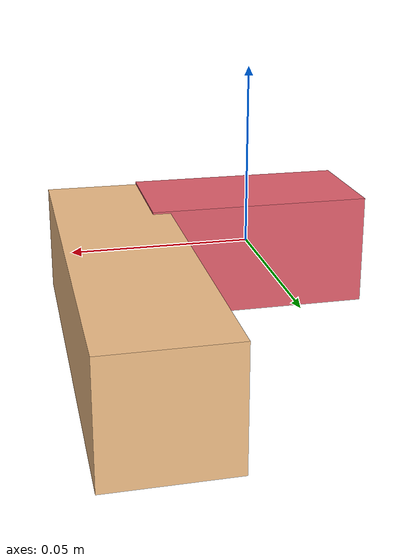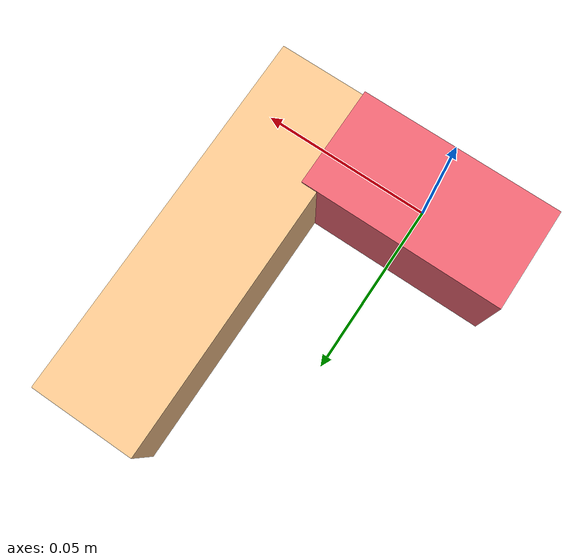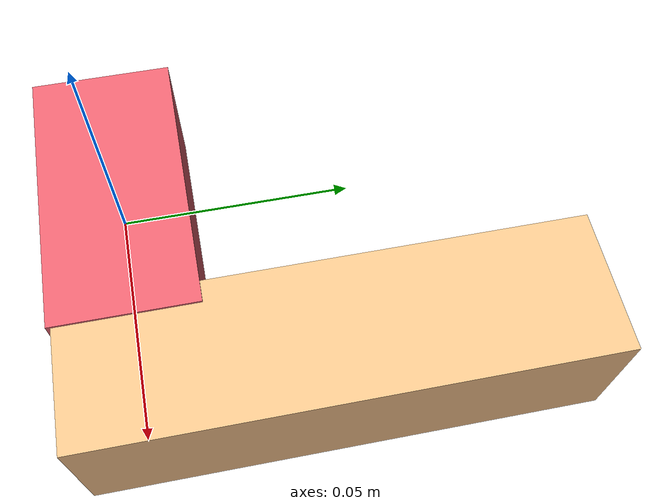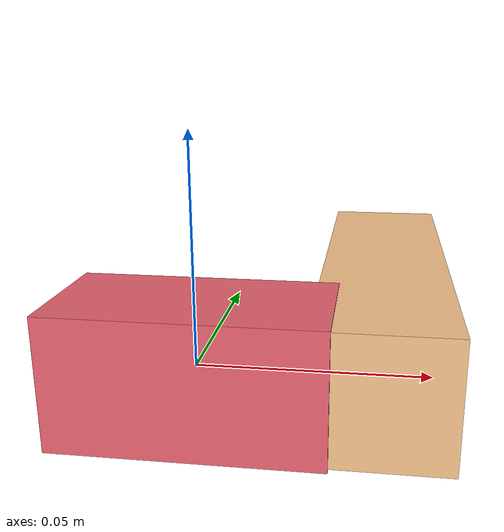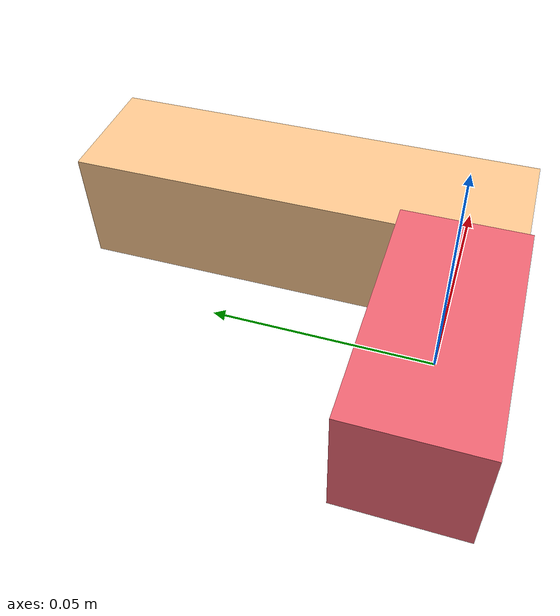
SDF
<sdf version="1.4"><world name="default"><model name="object0"><link name="link1"><pose>0 0 0 0 0 0</pose><inertial><pose>0 0 0 0 0 0</pose><mass>0.03194069203627867</mass><inertia><ixx>4.7911038054417996e-06</ixx><ixy>0</ixy><iyy>1.1708007149792806e-05</iyy><ixz>0</ixz><iyz>0</iyz><izz>1.1708007149792806e-05</izz></inertia></inertial><visual name="link1_visual"><pose>0 0  0 0 0 0</pose><geometry><box><size>0.05914942969681235 0.03 0.03</size></box></geometry><material><diffuse>0.8973528345440818 0.37789678793451714 0.4296857379028819 1</diffuse></material></visual><collision><pose>0 0  0 0 0 0</pose><geometry><box><size>0.05914942969681235 0.03 0.03</size></box></geometry></collision></link><link name="link2"><pose>0.03985637759506009 0.04009729082313061 0 0 0 0</pose><inertial><pose>0 0 0 0 0 0</pose><mass>0.058591025689413004</mass><inertia><ixx>6.158728372962686e-05</ixx><ixy>0</ixy><iyy>8.500581310439003e-06</iyy><ixz>0</ixz><iyz>0</iyz><izz>6.187535627259981e-05</izz></inertia></inertial><visual name="link2_visual"><pose>0 0  0 0 0 0</pose><geometry><box><size>0.03 0.1085018994248389 0.028999999999999998</size></box></geometry><material><diffuse>0.9546931574891535 0.7524592107788923 0.5364108034136332 1</diffuse></material></visual><collision><pose>0 0  0 0 0 0</pose><geometry><box><size>0.03 0.1085018994248389 0.028999999999999998</size></box></geometry></collision></link><joint name="link_joint_0" type="fixed"><parent>link1</parent><child>link2</child><pose>0 0 0 0 0 0</pose><axis><xyz>0 0 1</xyz></axis></joint></model></world></sdf>
